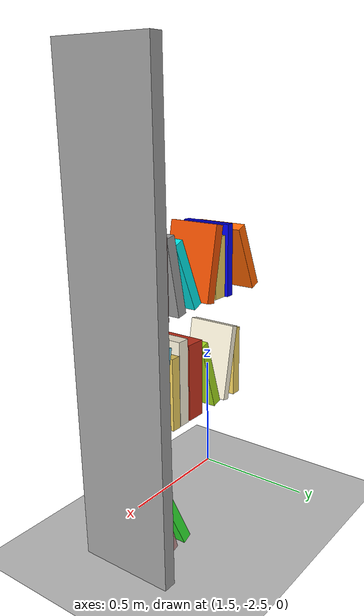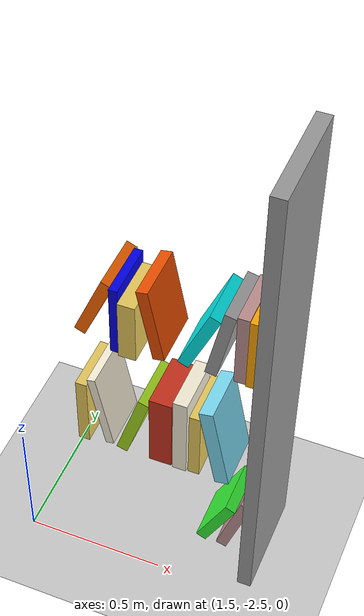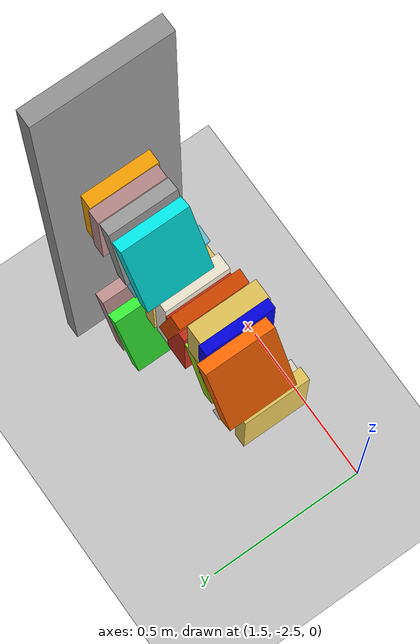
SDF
<sdf version="1.7">
 <world name="default">
  <model name="ground_plane">
   <static>1</static>
   <link name="link">
    <collision name="collision">
     <geometry><plane><normal>0 0 1</normal><size>100 100</size></plane></geometry>
     <surface>
      <contact><collide_bitmask>65535</collide_bitmask></contact>
      <friction><ode><mu>100</mu><mu2>50</mu2></ode></friction>
     </surface>
    </collision>
    <visual name="visual">
     <cast_shadows>0</cast_shadows>
     <geometry><plane><normal>0 0 1</normal><size>100 100</size></plane></geometry>
     <material>
      <script><uri>file://media/materials/scripts/gazebo.material</uri><name>Gazebo/Grey</name></script>
     </material>
    </visual>
   </link>
  </model>
  <model name="my_bookshelf">
   <link name="link_0">
    <inertial>
     <mass>1</mass>
     <inertia>
      <ixx>0.166667</ixx>
      <ixy>0</ixy>
      <ixz>0</ixz>
      <iyy>0.166667</iyy>
      <iyz>0</iyz>
      <izz>0.166667</izz>
     </inertia>
    </inertial>
    <pose>0.126439 -0.625111 0.659532 0 -0 0</pose>
    <gravity>0</gravity>
    <visual name="visual">
     <pose>0 0 0 -0.2 0 0</pose>
     <geometry><box><size>0.2 0.05 0.33</size></box></geometry>
     <material>
      <lighting>1</lighting>
      <script><uri>file://media/materials/scripts/gazebo.material</uri><name>Gazebo/Grey</name></script>
      <shader type="pixel"><normal_map>__default__</normal_map></shader>
      <ambient>0.47 0.84 0.93 1</ambient>
      <diffuse>0.47 0.84 0.93 1</diffuse>
      <specular>0.01 0.01 0.01 1</specular>
      <emissive>0 0 0 1</emissive>
     </material>
    </visual>
    <collision name="collision">
     <pose>0 0 0 -0.2 0 0</pose>
     <geometry><box><size>0.2 0.05 0.33</size></box></geometry>
     <surface>
      <friction>
       <ode><mu>1</mu><mu2>1</mu2><fdir1>0 0 0</fdir1><slip1>0</slip1><slip2>0</slip2></ode>
       <torsional>
        <coefficient>1</coefficient>
        <patch_radius>0</patch_radius>
        <surface_radius>0</surface_radius>
        <use_patch_radius>1</use_patch_radius>
        <ode><slip>0</slip></ode>
       </torsional>
      </friction>
      <bounce><restitution_coefficient>0</restitution_coefficient><threshold>1e+06</threshold></bounce>
      <contact>
       <collide_without_contact>0</collide_without_contact>
       <collide_without_contact_bitmask>1</collide_without_contact_bitmask>
       <collide_bitmask>1</collide_bitmask>
       <ode>
        <soft_cfm>0</soft_cfm>
        <soft_erp>0.2</soft_erp>
        <kp>1e+13</kp>
        <kd>1</kd>
        <max_vel>0.01</max_vel>
        <min_depth>0</min_depth>
       </ode>
       <bullet>
        <split_impulse>1</split_impulse>
        <split_impulse_penetration_threshold>-0.01</split_impulse_penetration_threshold>
        <soft_cfm>0</soft_cfm>
        <soft_erp>0.2</soft_erp>
        <kp>1e+13</kp>
        <kd>1</kd>
       </bullet>
      </contact>
     </surface>
    </collision>
   </link>
   <link name="link_0_clone">
    <inertial>
     <mass>1</mass>
     <inertia>
      <ixx>0.166667</ixx>
      <ixy>0</ixy>
      <ixz>0</ixz>
      <iyy>0.166667</iyy>
      <iyz>0</iyz>
      <izz>0.166667</izz>
     </inertia>
    </inertial>
    <pose>0.132216 -0.554276 0.635683 0 -0 0</pose>
    <visual name="visual">
     <geometry><box><size>0.2 0.04 0.28</size></box></geometry>
     <material>
      <lighting>1</lighting>
      <script><uri>file://media/materials/scripts/gazebo.material</uri><name>Gazebo/Grey</name></script>
      <shader type="pixel"><normal_map>__default__</normal_map></shader>
      <ambient>0.91 0.79 0.36 1</ambient>
      <diffuse>0.91 0.79 0.36 1</diffuse>
      <specular>0.01 0.01 0.01 1</specular>
      <emissive>0 0 0 1</emissive>
     </material>
    </visual>
    <collision name="collision">
     <geometry><box><size>0.2 0.04 0.28</size></box></geometry>
     <surface>
      <friction>
       <ode><mu>1</mu><mu2>1</mu2><fdir1>0 0 0</fdir1><slip1>0</slip1><slip2>0</slip2></ode>
       <torsional>
        <coefficient>1</coefficient>
        <patch_radius>0</patch_radius>
        <surface_radius>0</surface_radius>
        <use_patch_radius>1</use_patch_radius>
        <ode><slip>0</slip></ode>
       </torsional>
      </friction>
      <bounce><restitution_coefficient>0</restitution_coefficient><threshold>1e+06</threshold></bounce>
      <contact>
       <collide_without_contact>0</collide_without_contact>
       <collide_without_contact_bitmask>1</collide_without_contact_bitmask>
       <collide_bitmask>1</collide_bitmask>
       <ode>
        <soft_cfm>0</soft_cfm>
        <soft_erp>0.2</soft_erp>
        <kp>1e+13</kp>
        <kd>1</kd>
        <max_vel>0.01</max_vel>
        <min_depth>0</min_depth>
       </ode>
       <bullet>
        <split_impulse>1</split_impulse>
        <split_impulse_penetration_threshold>-0.01</split_impulse_penetration_threshold>
        <soft_cfm>0</soft_cfm>
        <soft_erp>0.2</soft_erp>
        <kp>1e+13</kp>
        <kd>1</kd>
       </bullet>
      </contact>
     </surface>
    </collision>
   </link>
   <link name="link_0_clone_0">
    <inertial>
     <mass>1</mass>
     <inertia>
      <ixx>0.166667</ixx>
      <ixy>0</ixy>
      <ixz>0</ixz>
      <iyy>0.166667</iyy>
      <iyz>0</iyz>
      <izz>0.166667</izz>
     </inertia>
    </inertial>
    <pose>0.128809 -0.503591 0.659532 0 -0 0</pose>
    <visual name="visual">
     <geometry><box><size>0.2 0.05 0.33</size></box></geometry>
     <material>
      <lighting>1</lighting>
      <script><uri>file://media/materials/scripts/gazebo.material</uri><name>Gazebo/Grey</name></script>
      <shader type="pixel"><normal_map>__default__</normal_map></shader>
      <ambient>0.96 0.93 0.84 1</ambient>
      <diffuse>0.96 0.93 0.84 1</diffuse>
      <specular>0.01 0.01 0.01 1</specular>
      <emissive>0 0 0 1</emissive>
     </material>
    </visual>
    <collision name="collision">
     <geometry><box><size>0.2 0.05 0.33</size></box></geometry>
     <surface>
      <friction>
       <ode><mu>1</mu><mu2>1</mu2><fdir1>0 0 0</fdir1><slip1>0</slip1><slip2>0</slip2></ode>
       <torsional>
        <coefficient>1</coefficient>
        <patch_radius>0</patch_radius>
        <surface_radius>0</surface_radius>
        <use_patch_radius>1</use_patch_radius>
        <ode><slip>0</slip></ode>
       </torsional>
      </friction>
      <bounce><restitution_coefficient>0</restitution_coefficient><threshold>1e+06</threshold></bounce>
      <contact>
       <collide_without_contact>0</collide_without_contact>
       <collide_without_contact_bitmask>1</collide_without_contact_bitmask>
       <collide_bitmask>1</collide_bitmask>
       <ode>
        <soft_cfm>0</soft_cfm>
        <soft_erp>0.2</soft_erp>
        <kp>1e+13</kp>
        <kd>1</kd>
        <max_vel>0.01</max_vel>
        <min_depth>0</min_depth>
       </ode>
       <bullet>
        <split_impulse>1</split_impulse>
        <split_impulse_penetration_threshold>-0.01</split_impulse_penetration_threshold>
        <soft_cfm>0</soft_cfm>
        <soft_erp>0.2</soft_erp>
        <kp>1e+13</kp>
        <kd>1</kd>
       </bullet>
      </contact>
     </surface>
    </collision>
   </link>
   <link name="link_0_clone_0_clone">
    <inertial>
     <mass>1</mass>
     <inertia>
      <ixx>0.166667</ixx>
      <ixy>0</ixy>
      <ixz>0</ixz>
      <iyy>0.166667</iyy>
      <iyz>0</iyz>
      <izz>0.166667</izz>
     </inertia>
    </inertial>
    <pose>0.130424 -0.435023 0.647115 0 -0 0</pose>
    <visual name="visual">
     <geometry><box><size>0.2 0.08 0.3</size></box></geometry>
     <material>
      <lighting>1</lighting>
      <script><uri>file://media/materials/scripts/gazebo.material</uri><name>Gazebo/Grey</name></script>
      <shader type="pixel"><normal_map>__default__</normal_map></shader>
      <ambient>0.78 0.19 0.11 1</ambient>
      <diffuse>0.78 0.19 0.11 1</diffuse>
      <specular>0.01 0.01 0.01 1</specular>
      <emissive>0 0 0 1</emissive>
     </material>
    </visual>
    <collision name="collision">
     <geometry><box><size>0.2 0.08 0.3</size></box></geometry>
     <surface>
      <friction>
       <ode><mu>1</mu><mu2>1</mu2><fdir1>0 0 0</fdir1><slip1>0</slip1><slip2>0</slip2></ode>
       <torsional>
        <coefficient>1</coefficient>
        <patch_radius>0</patch_radius>
        <surface_radius>0</surface_radius>
        <use_patch_radius>1</use_patch_radius>
        <ode><slip>0</slip></ode>
       </torsional>
      </friction>
      <bounce><restitution_coefficient>0</restitution_coefficient><threshold>1e+06</threshold></bounce>
      <contact>
       <collide_without_contact>0</collide_without_contact>
       <collide_without_contact_bitmask>1</collide_without_contact_bitmask>
       <collide_bitmask>1</collide_bitmask>
       <ode>
        <soft_cfm>0</soft_cfm>
        <soft_erp>0.2</soft_erp>
        <kp>1e+13</kp>
        <kd>1</kd>
        <max_vel>0.01</max_vel>
        <min_depth>0</min_depth>
       </ode>
       <bullet>
        <split_impulse>1</split_impulse>
        <split_impulse_penetration_threshold>-0.01</split_impulse_penetration_threshold>
        <soft_cfm>0</soft_cfm>
        <soft_erp>0.2</soft_erp>
        <kp>1e+13</kp>
        <kd>1</kd>
       </bullet>
      </contact>
     </surface>
    </collision>
   </link>
   <link name="link_0_clone_0_clone_0">
    <inertial>
     <mass>1</mass>
     <inertia>
      <ixx>0.166667</ixx>
      <ixy>0</ixy>
      <ixz>0</ixz>
      <iyy>0.166667</iyy>
      <iyz>0</iyz>
      <izz>0.166667</izz>
     </inertia>
    </inertial>
    <pose>0.13743 -0.21618 0.64809 0 -0 0</pose>
    <gravity>0</gravity>
    <visual name="visual">
     <pose>0 0 0 -0.2 0 0</pose>
     <geometry><box><size>0.2 0.03 0.3</size></box></geometry>
     <material>
      <lighting>1</lighting>
      <script><uri>file://media/materials/scripts/gazebo.material</uri><name>Gazebo/Grey</name></script>
      <shader type="pixel"><normal_map>__default__</normal_map></shader>
      <ambient>0.96 0.93 0.84 1</ambient>
      <diffuse>0.96 0.93 0.84 1</diffuse>
      <specular>0.01 0.01 0.01 1</specular>
      <emissive>0 0 0 1</emissive>
     </material>
    </visual>
    <collision name="collision">
     <pose>0 0 0 -0.2 0 0</pose>
     <geometry><box><size>0.2 0.03 0.3</size></box></geometry>
     <surface>
      <friction>
       <ode><mu>1</mu><mu2>1</mu2><fdir1>0 0 0</fdir1><slip1>0</slip1><slip2>0</slip2></ode>
       <torsional>
        <coefficient>1</coefficient>
        <patch_radius>0</patch_radius>
        <surface_radius>0</surface_radius>
        <use_patch_radius>1</use_patch_radius>
        <ode><slip>0</slip></ode>
       </torsional>
      </friction>
      <bounce><restitution_coefficient>0</restitution_coefficient><threshold>1e+06</threshold></bounce>
      <contact>
       <collide_without_contact>0</collide_without_contact>
       <collide_without_contact_bitmask>1</collide_without_contact_bitmask>
       <collide_bitmask>1</collide_bitmask>
       <ode>
        <soft_cfm>0</soft_cfm>
        <soft_erp>0.2</soft_erp>
        <kp>1e+13</kp>
        <kd>1</kd>
        <max_vel>0.01</max_vel>
        <min_depth>0</min_depth>
       </ode>
       <bullet>
        <split_impulse>1</split_impulse>
        <split_impulse_penetration_threshold>-0.01</split_impulse_penetration_threshold>
        <soft_cfm>0</soft_cfm>
        <soft_erp>0.2</soft_erp>
        <kp>1e+13</kp>
        <kd>1</kd>
       </bullet>
      </contact>
     </surface>
    </collision>
   </link>
   <link name="link_0_clone_0_clone_1_clone_0_clone_clone_clone">
    <inertial>
     <mass>1</mass>
     <inertia>
      <ixx>0.166667</ixx>
      <ixy>0</ixy>
      <ixz>0</ixz>
      <iyy>0.166667</iyy>
      <iyz>0</iyz>
      <izz>0.166667</izz>
     </inertia>
    </inertial>
    <pose>0.186794 -0.624015 0.16339 0 -0 0</pose>
    <visual name="visual">
     <pose>0 0 0 0.45 -0 0</pose>
     <geometry><box><size>0.2 0.04 0.24</size></box></geometry>
     <material>
      <lighting>1</lighting>
      <script><uri>file://media/materials/scripts/gazebo.material</uri><name>Gazebo/Grey</name></script>
      <shader type="pixel"><normal_map>__default__</normal_map></shader>
      <ambient>0.2 0.93 0.2 1</ambient>
      <diffuse>0.2 0.93 0.2 1</diffuse>
      <specular>0.01 0.01 0.01 1</specular>
      <emissive>0 0 0 1</emissive>
     </material>
    </visual>
    <collision name="collision">
     <pose>0 0 0 0.45 -0 0</pose>
     <geometry><box><size>0.2 0.04 0.24</size></box></geometry>
     <surface>
      <friction>
       <ode><mu>1</mu><mu2>1</mu2><fdir1>0 0 0</fdir1><slip1>0</slip1><slip2>0</slip2></ode>
       <torsional>
        <coefficient>1</coefficient>
        <patch_radius>0</patch_radius>
        <surface_radius>0</surface_radius>
        <use_patch_radius>1</use_patch_radius>
        <ode><slip>0</slip></ode>
       </torsional>
      </friction>
      <bounce><restitution_coefficient>0</restitution_coefficient><threshold>1e+06</threshold></bounce>
      <contact>
       <collide_without_contact>0</collide_without_contact>
       <collide_without_contact_bitmask>1</collide_without_contact_bitmask>
       <collide_bitmask>1</collide_bitmask>
       <ode>
        <soft_cfm>0</soft_cfm>
        <soft_erp>0.2</soft_erp>
        <kp>1e+13</kp>
        <kd>1</kd>
        <max_vel>0.01</max_vel>
        <min_depth>0</min_depth>
       </ode>
       <bullet>
        <split_impulse>1</split_impulse>
        <split_impulse_penetration_threshold>-0.01</split_impulse_penetration_threshold>
        <soft_cfm>0</soft_cfm>
        <soft_erp>0.2</soft_erp>
        <kp>1e+13</kp>
        <kd>1</kd>
       </bullet>
      </contact>
     </surface>
    </collision>
   </link>
   <link name="link_0_clone_clone">
    <inertial>
     <mass>1</mass>
     <inertia>
      <ixx>0.166667</ixx>
      <ixy>0</ixy>
      <ixz>0</ixz>
      <iyy>0.166667</iyy>
      <iyz>0</iyz>
      <izz>0.166667</izz>
     </inertia>
    </inertial>
    <pose>0.129091 -0.335574 0.635683 0 -0 0</pose>
    <visual name="visual">
     <pose>0 0 0 0.3 -0 0</pose>
     <geometry><box><size>0.2 0.04 0.28</size></box></geometry>
     <material>
      <lighting>1</lighting>
      <script><uri>file://media/materials/scripts/gazebo.material</uri><name>Gazebo/Grey</name></script>
      <shader type="pixel"><normal_map>__default__</normal_map></shader>
      <ambient>0.63 0.84 0.11 1</ambient>
      <diffuse>0.63 0.84 0.11 1</diffuse>
      <specular>0.01 0.01 0.01 1</specular>
      <emissive>0 0 0 1</emissive>
     </material>
    </visual>
    <collision name="collision">
     <pose>0 0 0 0.3 -0 0</pose>
     <geometry><box><size>0.2 0.04 0.28</size></box></geometry>
     <surface>
      <friction>
       <ode><mu>1</mu><mu2>1</mu2><fdir1>0 0 0</fdir1><slip1>0</slip1><slip2>0</slip2></ode>
       <torsional>
        <coefficient>1</coefficient>
        <patch_radius>0</patch_radius>
        <surface_radius>0</surface_radius>
        <use_patch_radius>1</use_patch_radius>
        <ode><slip>0</slip></ode>
       </torsional>
      </friction>
      <bounce><restitution_coefficient>0</restitution_coefficient><threshold>1e+06</threshold></bounce>
      <contact>
       <collide_without_contact>0</collide_without_contact>
       <collide_without_contact_bitmask>1</collide_without_contact_bitmask>
       <collide_bitmask>1</collide_bitmask>
       <ode>
        <soft_cfm>0</soft_cfm>
        <soft_erp>0.2</soft_erp>
        <kp>1e+13</kp>
        <kd>1</kd>
        <max_vel>0.01</max_vel>
        <min_depth>0</min_depth>
       </ode>
       <bullet>
        <split_impulse>1</split_impulse>
        <split_impulse_penetration_threshold>-0.01</split_impulse_penetration_threshold>
        <soft_cfm>0</soft_cfm>
        <soft_erp>0.2</soft_erp>
        <kp>1e+13</kp>
        <kd>1</kd>
       </bullet>
      </contact>
     </surface>
    </collision>
   </link>
   <link name="link_0_clone_clone_0">
    <inertial>
     <mass>1</mass>
     <inertia>
      <ixx>0.166667</ixx>
      <ixy>0</ixy>
      <ixz>0</ixz>
      <iyy>0.166667</iyy>
      <iyz>0</iyz>
      <izz>0.166667</izz>
     </inertia>
    </inertial>
    <pose>0.125867 -0.155367 0.635683 0 -0 0</pose>
    <visual name="visual">
     <geometry><box><size>0.2 0.04 0.28</size></box></geometry>
     <material>
      <lighting>1</lighting>
      <script><uri>file://media/materials/scripts/gazebo.material</uri><name>Gazebo/Grey</name></script>
      <shader type="pixel"><normal_map>__default__</normal_map></shader>
      <ambient>0.91 0.79 0.36 1</ambient>
      <diffuse>0.91 0.79 0.36 1</diffuse>
      <specular>0.01 0.01 0.01 1</specular>
      <emissive>0 0 0 1</emissive>
     </material>
    </visual>
    <collision name="collision">
     <geometry><box><size>0.2 0.04 0.28</size></box></geometry>
     <surface>
      <friction>
       <ode><mu>1</mu><mu2>1</mu2><fdir1>0 0 0</fdir1><slip1>0</slip1><slip2>0</slip2></ode>
       <torsional>
        <coefficient>1</coefficient>
        <patch_radius>0</patch_radius>
        <surface_radius>0</surface_radius>
        <use_patch_radius>1</use_patch_radius>
        <ode><slip>0</slip></ode>
       </torsional>
      </friction>
      <bounce><restitution_coefficient>0</restitution_coefficient><threshold>1e+06</threshold></bounce>
      <contact>
       <collide_without_contact>0</collide_without_contact>
       <collide_without_contact_bitmask>1</collide_without_contact_bitmask>
       <collide_bitmask>1</collide_bitmask>
       <ode>
        <soft_cfm>0</soft_cfm>
        <soft_erp>0.2</soft_erp>
        <kp>1e+13</kp>
        <kd>1</kd>
        <max_vel>0.01</max_vel>
        <min_depth>0</min_depth>
       </ode>
       <bullet>
        <split_impulse>1</split_impulse>
        <split_impulse_penetration_threshold>-0.01</split_impulse_penetration_threshold>
        <soft_cfm>0</soft_cfm>
        <soft_erp>0.2</soft_erp>
        <kp>1e+13</kp>
        <kd>1</kd>
       </bullet>
      </contact>
     </surface>
    </collision>
   </link>
   <link name="link_0_clone_clone_1">
    <inertial>
     <mass>1</mass>
     <inertia>
      <ixx>0.166667</ixx>
      <ixy>0</ixy>
      <ixz>0</ixz>
      <iyy>0.166667</iyy>
      <iyz>0</iyz>
      <izz>0.166667</izz>
     </inertia>
    </inertial>
    <pose>0.183198 -0.71768 1.08597 0 -0 0</pose>
    <visual name="visual">
     <geometry><box><size>0.2 0.04 0.28</size></box></geometry>
     <material>
      <lighting>1</lighting>
      <script><uri>file://media/materials/scripts/gazebo.material</uri><name>Gazebo/Grey</name></script>
      <shader type="pixel"><normal_map>__default__</normal_map></shader>
      <ambient>1 0.65 0 1</ambient>
      <diffuse>0.7 0.7 0.7 1</diffuse>
      <specular>0.01 0.01 0.01 1</specular>
      <emissive>0 0 0 1</emissive>
     </material>
    </visual>
    <collision name="collision">
     <geometry><box><size>0.2 0.04 0.28</size></box></geometry>
     <surface>
      <friction>
       <ode><mu>1</mu><mu2>1</mu2><fdir1>0 0 0</fdir1><slip1>0</slip1><slip2>0</slip2></ode>
       <torsional>
        <coefficient>1</coefficient>
        <patch_radius>0</patch_radius>
        <surface_radius>0</surface_radius>
        <use_patch_radius>1</use_patch_radius>
        <ode><slip>0</slip></ode>
       </torsional>
      </friction>
      <bounce><restitution_coefficient>0</restitution_coefficient><threshold>1e+06</threshold></bounce>
      <contact>
       <collide_without_contact>0</collide_without_contact>
       <collide_without_contact_bitmask>1</collide_without_contact_bitmask>
       <collide_bitmask>1</collide_bitmask>
       <ode>
        <soft_cfm>0</soft_cfm>
        <soft_erp>0.2</soft_erp>
        <kp>1e+13</kp>
        <kd>1</kd>
        <max_vel>0.01</max_vel>
        <min_depth>0</min_depth>
       </ode>
       <bullet>
        <split_impulse>1</split_impulse>
        <split_impulse_penetration_threshold>-0.01</split_impulse_penetration_threshold>
        <soft_cfm>0</soft_cfm>
        <soft_erp>0.2</soft_erp>
        <kp>1e+13</kp>
        <kd>1</kd>
       </bullet>
      </contact>
     </surface>
    </collision>
   </link>
   <link name="link_0_clone_clone_1_clone">
    <inertial>
     <mass>1</mass>
     <inertia>
      <ixx>0.166667</ixx>
      <ixy>0</ixy>
      <ixz>0</ixz>
      <iyy>0.166667</iyy>
      <iyz>0</iyz>
      <izz>0.166667</izz>
     </inertia>
    </inertial>
    <pose>0.189253 -0.676162 1.08597 0 -0 0</pose>
    <visual name="visual">
     <geometry><box><size>0.2 0.04 0.28</size></box></geometry>
     <material>
      <lighting>1</lighting>
      <script><uri>file://media/materials/scripts/gazebo.material</uri><name>Gazebo/Grey</name></script>
      <shader type="pixel"><normal_map>__default__</normal_map></shader>
      <ambient>0.74 0.56 0.56 1</ambient>
      <diffuse>0.4 0.4 0.4 1</diffuse>
      <specular>0.01 0.01 0.01 1</specular>
      <emissive>0 0 0 1</emissive>
     </material>
    </visual>
    <collision name="collision">
     <geometry><box><size>0.2 0.04 0.28</size></box></geometry>
     <surface>
      <friction>
       <ode><mu>1</mu><mu2>1</mu2><fdir1>0 0 0</fdir1><slip1>0</slip1><slip2>0</slip2></ode>
       <torsional>
        <coefficient>1</coefficient>
        <patch_radius>0</patch_radius>
        <surface_radius>0</surface_radius>
        <use_patch_radius>1</use_patch_radius>
        <ode><slip>0</slip></ode>
       </torsional>
      </friction>
      <bounce><restitution_coefficient>0</restitution_coefficient><threshold>1e+06</threshold></bounce>
      <contact>
       <collide_without_contact>0</collide_without_contact>
       <collide_without_contact_bitmask>1</collide_without_contact_bitmask>
       <collide_bitmask>1</collide_bitmask>
       <ode>
        <soft_cfm>0</soft_cfm>
        <soft_erp>0.2</soft_erp>
        <kp>1e+13</kp>
        <kd>1</kd>
        <max_vel>0.01</max_vel>
        <min_depth>0</min_depth>
       </ode>
       <bullet>
        <split_impulse>1</split_impulse>
        <split_impulse_penetration_threshold>-0.01</split_impulse_penetration_threshold>
        <soft_cfm>0</soft_cfm>
        <soft_erp>0.2</soft_erp>
        <kp>1e+13</kp>
        <kd>1</kd>
       </bullet>
      </contact>
     </surface>
    </collision>
   </link>
   <link name="link_0_clone_clone_1_clone_clone">
    <inertial>
     <mass>1</mass>
     <inertia>
      <ixx>0.166667</ixx>
      <ixy>0</ixy>
      <ixz>0</ixz>
      <iyy>0.166667</iyy>
      <iyz>0</iyz>
      <izz>0.166667</izz>
     </inertia>
    </inertial>
    <pose>0.186128 -0.608032 1.08597 0 -0 0</pose>
    <visual name="visual">
     <pose>0 0 0 0.2 -0 0</pose>
     <geometry><box><size>0.2 0.04 0.28</size></box></geometry>
     <material>
      <lighting>1</lighting>
      <script><uri>file://media/materials/scripts/gazebo.material</uri><name>Gazebo/Grey</name></script>
      <shader type="pixel"><normal_map>__default__</normal_map></shader>
      <ambient>0.9 0.9 0.9 1</ambient>
      <diffuse>0.8 0.8 0.8 1</diffuse>
      <specular>0.01 0.01 0.01 1</specular>
      <emissive>0 0 0 1</emissive>
     </material>
    </visual>
    <collision name="collision">
     <pose>0 0 0 0.2 -0 0</pose>
     <geometry><box><size>0.2 0.04 0.28</size></box></geometry>
     <surface>
      <friction>
       <ode><mu>1</mu><mu2>1</mu2><fdir1>0 0 0</fdir1><slip1>0</slip1><slip2>0</slip2></ode>
       <torsional>
        <coefficient>1</coefficient>
        <patch_radius>0</patch_radius>
        <surface_radius>0</surface_radius>
        <use_patch_radius>1</use_patch_radius>
        <ode><slip>0</slip></ode>
       </torsional>
      </friction>
      <bounce><restitution_coefficient>0</restitution_coefficient><threshold>1e+06</threshold></bounce>
      <contact>
       <collide_without_contact>0</collide_without_contact>
       <collide_without_contact_bitmask>1</collide_without_contact_bitmask>
       <collide_bitmask>1</collide_bitmask>
       <ode>
        <soft_cfm>0</soft_cfm>
        <soft_erp>0.2</soft_erp>
        <kp>1e+13</kp>
        <kd>1</kd>
        <max_vel>0.01</max_vel>
        <min_depth>0</min_depth>
       </ode>
       <bullet>
        <split_impulse>1</split_impulse>
        <split_impulse_penetration_threshold>-0.01</split_impulse_penetration_threshold>
        <soft_cfm>0</soft_cfm>
        <soft_erp>0.2</soft_erp>
        <kp>1e+13</kp>
        <kd>1</kd>
       </bullet>
      </contact>
     </surface>
    </collision>
   </link>
   <link name="link_0_clone_clone_1_clone_clone_1">
    <inertial>
     <mass>1</mass>
     <inertia>
      <ixx>0.166667</ixx>
      <ixy>0</ixy>
      <ixz>0</ixz>
      <iyy>0.166667</iyy>
      <iyz>0</iyz>
      <izz>0.166667</izz>
     </inertia>
    </inertial>
    <pose>0.186239 -0.690876 0.184934 0 -0 0</pose>
    <visual name="visual">
     <pose>0 0 0 0.3 -0 0</pose>
     <geometry><box><size>0.2 0.04 0.28</size></box></geometry>
     <material>
      <lighting>1</lighting>
      <script><uri>file://media/materials/scripts/gazebo.material</uri><name>Gazebo/Grey</name></script>
      <shader type="pixel"><normal_map>__default__</normal_map></shader>
      <ambient>0.74 0.56 0.56 1</ambient>
      <diffuse>0.4 0.4 0.4 1</diffuse>
      <specular>0.01 0.01 0.01 1</specular>
      <emissive>0 0 0 1</emissive>
     </material>
    </visual>
    <collision name="collision">
     <pose>0 0 0 0.3 -0 0</pose>
     <geometry><box><size>0.2 0.04 0.28</size></box></geometry>
     <surface>
      <friction>
       <ode><mu>1</mu><mu2>1</mu2><fdir1>0 0 0</fdir1><slip1>0</slip1><slip2>0</slip2></ode>
       <torsional>
        <coefficient>1</coefficient>
        <patch_radius>0</patch_radius>
        <surface_radius>0</surface_radius>
        <use_patch_radius>1</use_patch_radius>
        <ode><slip>0</slip></ode>
       </torsional>
      </friction>
      <bounce><restitution_coefficient>0</restitution_coefficient><threshold>1e+06</threshold></bounce>
      <contact>
       <collide_without_contact>0</collide_without_contact>
       <collide_without_contact_bitmask>1</collide_without_contact_bitmask>
       <collide_bitmask>1</collide_bitmask>
       <ode>
        <soft_cfm>0</soft_cfm>
        <soft_erp>0.2</soft_erp>
        <kp>1e+13</kp>
        <kd>1</kd>
        <max_vel>0.01</max_vel>
        <min_depth>0</min_depth>
       </ode>
       <bullet>
        <split_impulse>1</split_impulse>
        <split_impulse_penetration_threshold>-0.01</split_impulse_penetration_threshold>
        <soft_cfm>0</soft_cfm>
        <soft_erp>0.2</soft_erp>
        <kp>1e+13</kp>
        <kd>1</kd>
       </bullet>
      </contact>
     </surface>
    </collision>
   </link>
   <link name="link_0_clone_clone_1_clone_clone_clone">
    <inertial>
     <mass>1</mass>
     <inertia>
      <ixx>0.166667</ixx>
      <ixy>0</ixy>
      <ixz>0</ixz>
      <iyy>0.166667</iyy>
      <iyz>0</iyz>
      <izz>0.166667</izz>
     </inertia>
    </inertial>
    <pose>0.183565 -0.539694 1.07689 0 -0 0</pose>
    <visual name="visual">
     <pose>0 0 0 0.4 -0 0</pose>
     <geometry><box><size>0.2 0.04 0.26</size></box></geometry>
     <material>
      <lighting>1</lighting>
      <script><uri>file://media/materials/scripts/gazebo.material</uri><name>Gazebo/Grey</name></script>
      <shader type="pixel"><normal_map>__default__</normal_map></shader>
      <ambient>0 0.9 0.9 1</ambient>
      <diffuse>0.8 0.8 0.8 1</diffuse>
      <specular>0.01 0.01 0.01 1</specular>
      <emissive>0 0 0 1</emissive>
     </material>
    </visual>
    <collision name="collision">
     <pose>0 0 0 0.4 -0 0</pose>
     <geometry><box><size>0.2 0.04 0.26</size></box></geometry>
     <surface>
      <friction>
       <ode><mu>1</mu><mu2>1</mu2><fdir1>0 0 0</fdir1><slip1>0</slip1><slip2>0</slip2></ode>
       <torsional>
        <coefficient>1</coefficient>
        <patch_radius>0</patch_radius>
        <surface_radius>0</surface_radius>
        <use_patch_radius>1</use_patch_radius>
        <ode><slip>0</slip></ode>
       </torsional>
      </friction>
      <bounce><restitution_coefficient>0</restitution_coefficient><threshold>1e+06</threshold></bounce>
      <contact>
       <collide_without_contact>0</collide_without_contact>
       <collide_without_contact_bitmask>1</collide_without_contact_bitmask>
       <collide_bitmask>1</collide_bitmask>
       <ode>
        <soft_cfm>0</soft_cfm>
        <soft_erp>0.2</soft_erp>
        <kp>1e+13</kp>
        <kd>1</kd>
        <max_vel>0.01</max_vel>
        <min_depth>0</min_depth>
       </ode>
       <bullet>
        <split_impulse>1</split_impulse>
        <split_impulse_penetration_threshold>-0.01</split_impulse_penetration_threshold>
        <soft_cfm>0</soft_cfm>
        <soft_erp>0.2</soft_erp>
        <kp>1e+13</kp>
        <kd>1</kd>
       </bullet>
      </contact>
     </surface>
    </collision>
   </link>
   <link name="link_0_clone_clone_1_clone_clone_clone_clone">
    <inertial>
     <mass>1</mass>
     <inertia>
      <ixx>0.166667</ixx>
      <ixy>0</ixy>
      <ixz>0</ixz>
      <iyy>0.166667</iyy>
      <iyz>0</iyz>
      <izz>0.166667</izz>
     </inertia>
    </inertial>
    <pose>0.191585 -0.180788 1.07689 0 -0 0</pose>
    <visual name="visual">
     <pose>0 0 0 0.4 -0 0</pose>
     <geometry><box><size>0.2 0.04 0.26</size></box></geometry>
     <material>
      <lighting>1</lighting>
      <script><uri>file://media/materials/scripts/gazebo.material</uri><name>Gazebo/Grey</name></script>
      <shader type="pixel"><normal_map>__default__</normal_map></shader>
      <ambient>1 0.4 0 1</ambient>
      <diffuse>0.8 0.8 0.8 1</diffuse>
      <specular>0.01 0.01 0.01 1</specular>
      <emissive>0 0 0 1</emissive>
     </material>
    </visual>
    <collision name="collision">
     <pose>0 0 0 0.4 -0 0</pose>
     <geometry><box><size>0.2 0.04 0.26</size></box></geometry>
     <surface>
      <friction>
       <ode><mu>1</mu><mu2>1</mu2><fdir1>0 0 0</fdir1><slip1>0</slip1><slip2>0</slip2></ode>
       <torsional>
        <coefficient>1</coefficient>
        <patch_radius>0</patch_radius>
        <surface_radius>0</surface_radius>
        <use_patch_radius>1</use_patch_radius>
        <ode><slip>0</slip></ode>
       </torsional>
      </friction>
      <bounce><restitution_coefficient>0</restitution_coefficient><threshold>1e+06</threshold></bounce>
      <contact>
       <collide_without_contact>0</collide_without_contact>
       <collide_without_contact_bitmask>1</collide_without_contact_bitmask>
       <collide_bitmask>1</collide_bitmask>
       <ode>
        <soft_cfm>0</soft_cfm>
        <soft_erp>0.2</soft_erp>
        <kp>1e+13</kp>
        <kd>1</kd>
        <max_vel>0.01</max_vel>
        <min_depth>0</min_depth>
       </ode>
       <bullet>
        <split_impulse>1</split_impulse>
        <split_impulse_penetration_threshold>-0.01</split_impulse_penetration_threshold>
        <soft_cfm>0</soft_cfm>
        <soft_erp>0.2</soft_erp>
        <kp>1e+13</kp>
        <kd>1</kd>
       </bullet>
      </contact>
     </surface>
    </collision>
   </link>
   <link name="link_0_clone_clone_2">
    <inertial>
     <mass>1</mass>
     <inertia>
      <ixx>0.166667</ixx>
      <ixy>0</ixy>
      <ixz>0</ixz>
      <iyy>0.166667</iyy>
      <iyz>0</iyz>
      <izz>0.166667</izz>
     </inertia>
    </inertial>
    <pose>0.179851 -0.38095 1.0844 0 -0 0</pose>
    <visual name="visual">
     <pose>0 0 0 -0.2 0 0</pose>
     <geometry><box><size>0.2 0.04 0.28</size></box></geometry>
     <material>
      <lighting>1</lighting>
      <script><uri>file://media/materials/scripts/gazebo.material</uri><name>Gazebo/Grey</name></script>
      <shader type="pixel"><normal_map>__default__</normal_map></shader>
      <ambient>0.91 0.3 0 1</ambient>
      <diffuse>0.7 0.7 0.7 1</diffuse>
      <specular>0.01 0.01 0.01 1</specular>
      <emissive>0 0 0 1</emissive>
     </material>
    </visual>
    <collision name="collision">
     <pose>0 0 0 -0.2 0 0</pose>
     <geometry><box><size>0.2 0.04 0.28</size></box></geometry>
     <surface>
      <friction>
       <ode><mu>1</mu><mu2>1</mu2><fdir1>0 0 0</fdir1><slip1>0</slip1><slip2>0</slip2></ode>
       <torsional>
        <coefficient>1</coefficient>
        <patch_radius>0</patch_radius>
        <surface_radius>0</surface_radius>
        <use_patch_radius>1</use_patch_radius>
        <ode><slip>0</slip></ode>
       </torsional>
      </friction>
      <bounce><restitution_coefficient>0</restitution_coefficient><threshold>1e+06</threshold></bounce>
      <contact>
       <collide_without_contact>0</collide_without_contact>
       <collide_without_contact_bitmask>1</collide_without_contact_bitmask>
       <collide_bitmask>1</collide_bitmask>
       <ode>
        <soft_cfm>0</soft_cfm>
        <soft_erp>0.2</soft_erp>
        <kp>1e+13</kp>
        <kd>1</kd>
        <max_vel>0.01</max_vel>
        <min_depth>0</min_depth>
       </ode>
       <bullet>
        <split_impulse>1</split_impulse>
        <split_impulse_penetration_threshold>-0.01</split_impulse_penetration_threshold>
        <soft_cfm>0</soft_cfm>
        <soft_erp>0.2</soft_erp>
        <kp>1e+13</kp>
        <kd>1</kd>
       </bullet>
      </contact>
     </surface>
    </collision>
   </link>
   <link name="link_0_clone_clone_3">
    <inertial>
     <mass>1</mass>
     <inertia>
      <ixx>0.166667</ixx>
      <ixy>0</ixy>
      <ixz>0</ixz>
      <iyy>0.166667</iyy>
      <iyz>0</iyz>
      <izz>0.166667</izz>
     </inertia>
    </inertial>
    <pose>0.153871 -0.311875 1.05588 0 -0 0</pose>
    <visual name="visual">
     <geometry><box><size>0.2 0.06 0.23</size></box></geometry>
     <material>
      <lighting>1</lighting>
      <script><uri>file://media/materials/scripts/gazebo.material</uri><name>Gazebo/Grey</name></script>
      <shader type="pixel"><normal_map>__default__</normal_map></shader>
      <ambient>0.91 0.79 0.36 1</ambient>
      <diffuse>0.91 0.79 0.36 1</diffuse>
      <specular>0.01 0.01 0.01 1</specular>
      <emissive>0 0 0 1</emissive>
     </material>
    </visual>
    <collision name="collision">
     <geometry><box><size>0.2 0.06 0.23</size></box></geometry>
     <surface>
      <friction>
       <ode><mu>1</mu><mu2>1</mu2><fdir1>0 0 0</fdir1><slip1>0</slip1><slip2>0</slip2></ode>
       <torsional>
        <coefficient>1</coefficient>
        <patch_radius>0</patch_radius>
        <surface_radius>0</surface_radius>
        <use_patch_radius>1</use_patch_radius>
        <ode><slip>0</slip></ode>
       </torsional>
      </friction>
      <bounce><restitution_coefficient>0</restitution_coefficient><threshold>1e+06</threshold></bounce>
      <contact>
       <collide_without_contact>0</collide_without_contact>
       <collide_without_contact_bitmask>1</collide_without_contact_bitmask>
       <collide_bitmask>1</collide_bitmask>
       <ode>
        <soft_cfm>0</soft_cfm>
        <soft_erp>0.2</soft_erp>
        <kp>1e+13</kp>
        <kd>1</kd>
        <max_vel>0.01</max_vel>
        <min_depth>0</min_depth>
       </ode>
       <bullet>
        <split_impulse>1</split_impulse>
        <split_impulse_penetration_threshold>-0.01</split_impulse_penetration_threshold>
        <soft_cfm>0</soft_cfm>
        <soft_erp>0.2</soft_erp>
        <kp>1e+13</kp>
        <kd>1</kd>
       </bullet>
      </contact>
     </surface>
    </collision>
   </link>
   <link name="link_0_clone_clone_3_clone">
    <inertial>
     <mass>1</mass>
     <inertia>
      <ixx>0.166667</ixx>
      <ixy>0</ixy>
      <ixz>0</ixz>
      <iyy>0.166667</iyy>
      <iyz>0</iyz>
      <izz>0.166667</izz>
     </inertia>
    </inertial>
    <pose>0.16451 -0.264855 1.0754 0 -0 0</pose>
    <visual name="visual">
     <geometry><box><size>0.2 0.03 0.27</size></box></geometry>
     <material>
      <lighting>1</lighting>
      <script><uri>file://media/materials/scripts/gazebo.material</uri><name>Gazebo/Grey</name></script>
      <shader type="pixel"><normal_map>__default__</normal_map></shader>
      <ambient>0 0 0.9 1</ambient>
      <diffuse>0.7 0.7 0.7 1</diffuse>
      <specular>0.01 0.01 0.01 1</specular>
      <emissive>0 0 0 1</emissive>
     </material>
    </visual>
    <collision name="collision">
     <geometry><box><size>0.2 0.03 0.27</size></box></geometry>
     <surface>
      <friction>
       <ode><mu>1</mu><mu2>1</mu2><fdir1>0 0 0</fdir1><slip1>0</slip1><slip2>0</slip2></ode>
       <torsional>
        <coefficient>1</coefficient>
        <patch_radius>0</patch_radius>
        <surface_radius>0</surface_radius>
        <use_patch_radius>1</use_patch_radius>
        <ode><slip>0</slip></ode>
       </torsional>
      </friction>
      <bounce><restitution_coefficient>0</restitution_coefficient><threshold>1e+06</threshold></bounce>
      <contact>
       <collide_without_contact>0</collide_without_contact>
       <collide_without_contact_bitmask>1</collide_without_contact_bitmask>
       <collide_bitmask>1</collide_bitmask>
       <ode>
        <soft_cfm>0</soft_cfm>
        <soft_erp>0.2</soft_erp>
        <kp>1e+13</kp>
        <kd>1</kd>
        <max_vel>0.01</max_vel>
        <min_depth>0</min_depth>
       </ode>
       <bullet>
        <split_impulse>1</split_impulse>
        <split_impulse_penetration_threshold>-0.01</split_impulse_penetration_threshold>
        <soft_cfm>0</soft_cfm>
        <soft_erp>0.2</soft_erp>
        <kp>1e+13</kp>
        <kd>1</kd>
       </bullet>
      </contact>
     </surface>
    </collision>
   </link>
   <link name="link_clone_0">
    <inertial>
     <mass>1</mass>
     <inertia>
      <ixx>0.166667</ixx>
      <ixy>0</ixy>
      <ixz>0</ixz>
      <iyy>0.166667</iyy>
      <iyz>0</iyz>
      <izz>0.166667</izz>
     </inertia>
    </inertial>
    <pose>0.1762 -0.777121 0.006003 0 -0 0</pose>
    <visual name="visual">
     <geometry><box><size>0.05 0.38 1.8</size></box></geometry>
     <material>
      <script><name>Gazebo/Grey</name><uri>file://media/materials/scripts/gazebo.material</uri></script>
      <shader type="pixel"><normal_map>__default__</normal_map></shader>
      <ambient>0.9 0.9 0.9 1</ambient>
      <diffuse>0.9 0.9 0.9 1</diffuse>
      <specular>0.01 0.01 0.01 1</specular>
      <emissive>0 0 0 1</emissive>
     </material>
     <pose>0 0 0.9 0 -0 1.5707</pose>
    </visual>
    <collision name="collision">
     <pose>0 0 0.9 0 -0 1.5707</pose>
     <geometry><box><size>0.05 0.38 1.8</size></box></geometry>
     <surface>
      <friction>
       <ode><mu>1</mu><mu2>1</mu2><fdir1>0 0 0</fdir1><slip1>0</slip1><slip2>0</slip2></ode>
       <torsional>
        <coefficient>1</coefficient>
        <patch_radius>0</patch_radius>
        <surface_radius>0</surface_radius>
        <use_patch_radius>1</use_patch_radius>
        <ode><slip>0</slip></ode>
       </torsional>
      </friction>
      <bounce><restitution_coefficient>0</restitution_coefficient><threshold>1e+06</threshold></bounce>
      <contact>
       <collide_without_contact>0</collide_without_contact>
       <collide_without_contact_bitmask>1</collide_without_contact_bitmask>
       <collide_bitmask>1</collide_bitmask>
       <ode>
        <soft_cfm>0</soft_cfm>
        <soft_erp>0.2</soft_erp>
        <kp>1e+13</kp>
        <kd>1</kd>
        <max_vel>0.01</max_vel>
        <min_depth>0</min_depth>
       </ode>
       <bullet>
        <split_impulse>1</split_impulse>
        <split_impulse_penetration_threshold>-0.01</split_impulse_penetration_threshold>
        <soft_cfm>0</soft_cfm>
        <soft_erp>0.2</soft_erp>
        <kp>1e+13</kp>
        <kd>1</kd>
       </bullet>
      </contact>
     </surface>
    </collision>
   </link>
   <static>1</static>
   <pose>1.53755 -2.44298 -0 0 -0 1.5708</pose>
  </model>
 </world>
</sdf>
